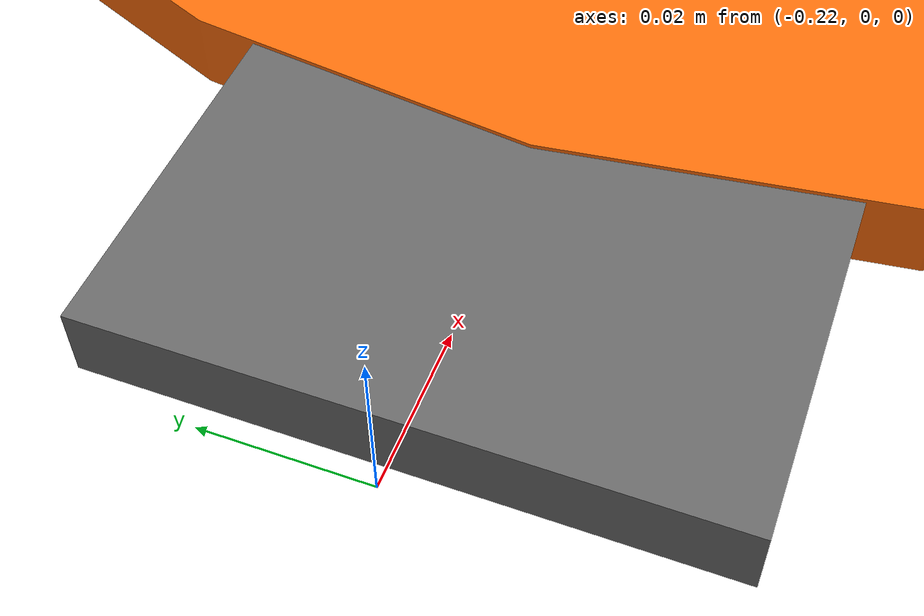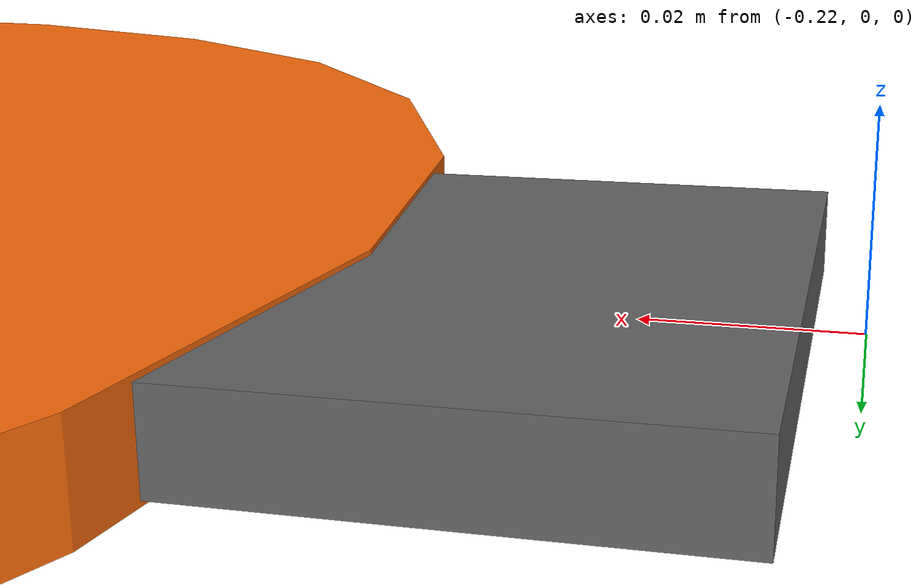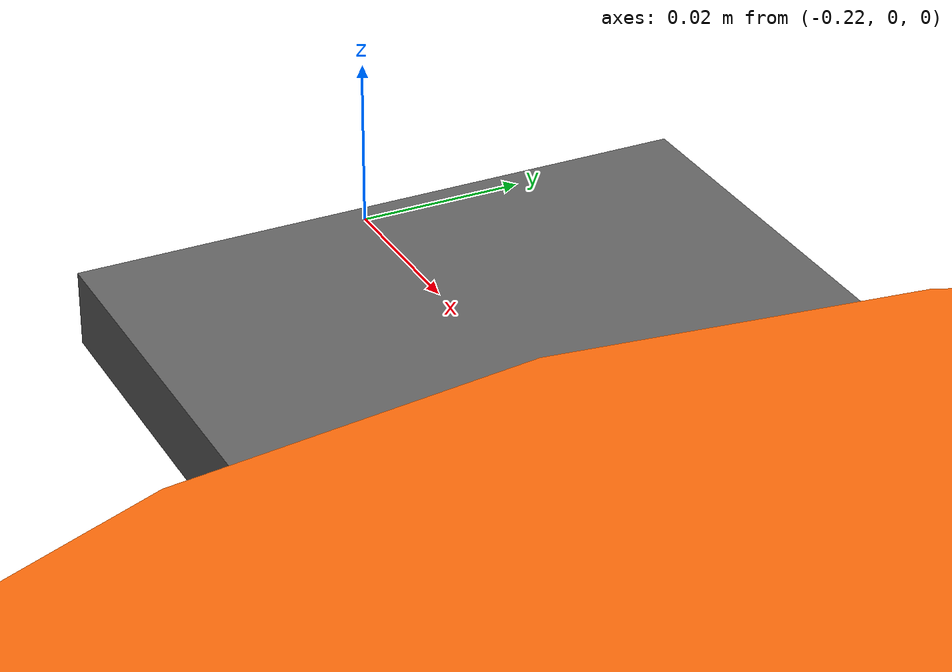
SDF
<?xml version="1.0"?>
<sdf version="1.7">
  <model name="paddle">
    <link name="base_link">
      <inertial>
        <mass>0.1</mass>
        <inertia>
          <ixx>0.0007664583333333</ixx>
          <ixy>0</ixy>
          <ixz>0</ixz>
          <iyy>0.0007664583333333</iyy>
          <iyz>0</iyz>
          <izz>0.00153125</izz> <!-- (1/2)mr^2 -->
        </inertia>
      </inertial>

      <visual name="paddle_link">
        <pose>0 0 0 0 0 0</pose>
        <geometry>
          <cylinder>
            <radius>0.175</radius>
            <length>0.01</length>
          </cylinder>
        </geometry>
        <material>
          <diffuse>1.0 0.423529411765 0.0392156862745 1.0</diffuse>
        </material>
      </visual>
      <visual name="handle_link">
        <pose> -.19 0 0 0 1.5708 0</pose>
        <geometry>
          <box>
            <size>.009 .075 .05</size>
          </box>
        </geometry>
        <material>
          <diffuse>0.4 0.4 0.4 1.0</diffuse>
        </material>
      </visual>
      <collision name="collision_cylinder">
        <pose>0 0 0 0 0 0</pose>
        <geometry>
          <cylinder>
            <radius>0.175</radius>
            <length>0.01</length>
          </cylinder>
        </geometry>
        <drake:proximity_properties>
          <drake:hunt_crossley_dissipation>0.05</drake:hunt_crossley_dissipation>
        </drake:proximity_properties>
        <surface>
          <friction>
            <ode>
              <mu>0.3</mu>
              <mu2>0.3</mu2>
            </ode>
          </friction>
          <bounce>
              <restitution_coefficient> 1. </restitution_coefficient>
              <threshold>.0.</threshold>
          </bounce>
        </surface>
      </collision>
    </link>
  </model>
</sdf>
